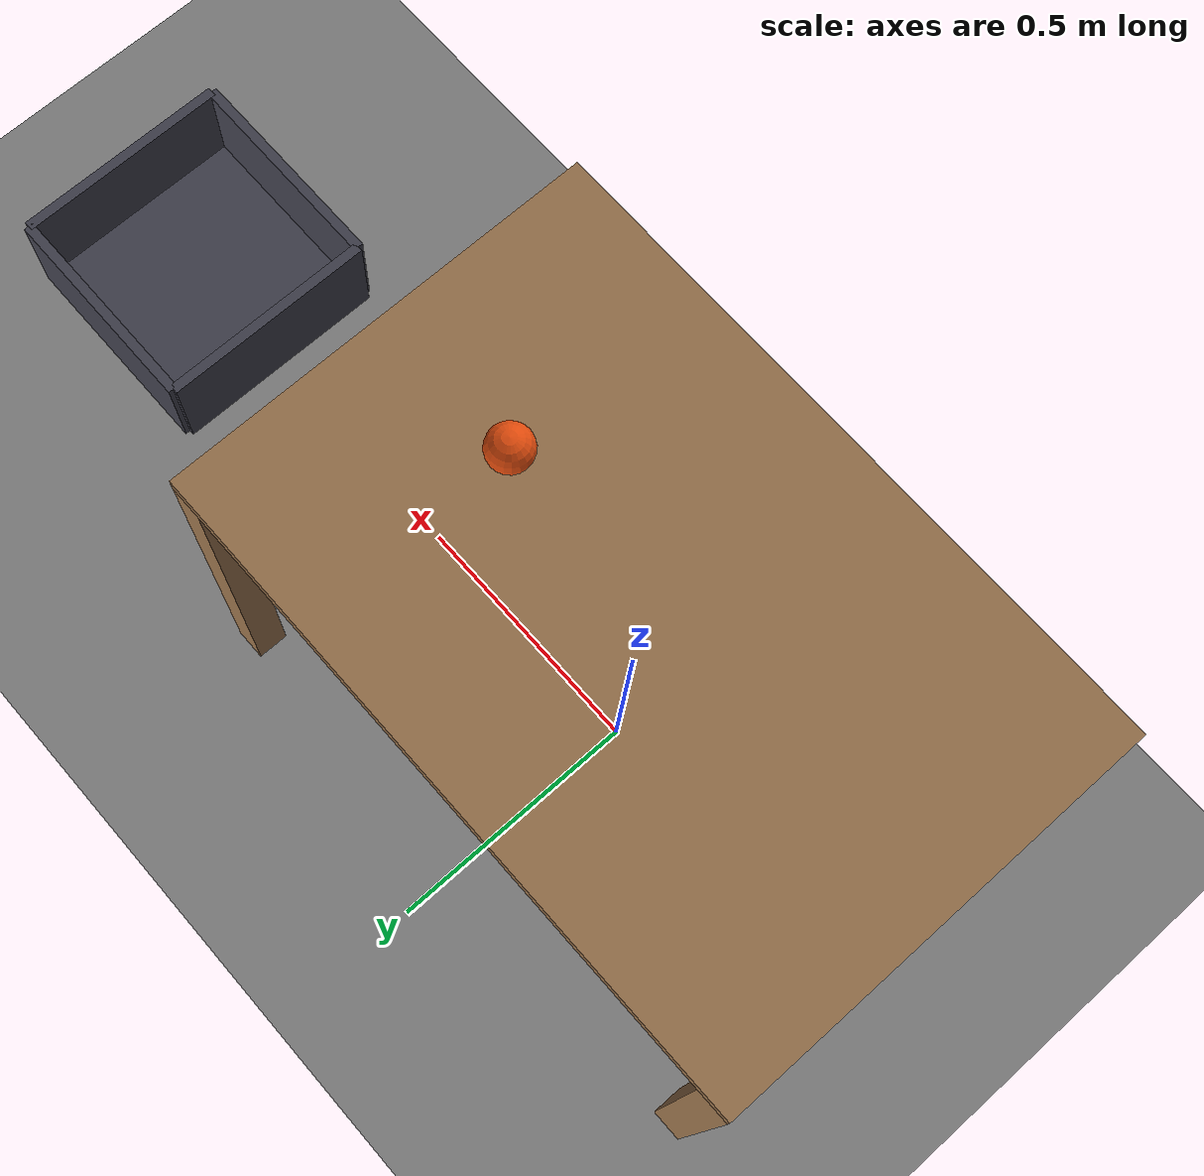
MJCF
<mujoco model="rolling_ball_into_a_floor_bucket">
  <compiler angle="radian"/>
  <option timestep="0.002"/>
  <worldbody>
    <geom name="floor" type="plane" size="6 6 0.1" friction="0.8 0.01 0.002"/>
    <body name="table">
      <geom name="table_top" type="box" pos="0 0 0.785" size="0.6 0.4 0.015" friction="0.6 0.005 0.001" rgba="0.6 0.45 0.3 1"/>
      <geom name="table_near_left_leg" type="box" pos="-0.57 0.37 0.385" size="0.03 0.03 0.385" friction="0.6 0.005 0.001" rgba="0.6 0.45 0.3 1"/>
      <geom name="table_near_right_leg" type="box" pos="-0.57 -0.37 0.385" size="0.03 0.03 0.385" friction="0.6 0.005 0.001" rgba="0.6 0.45 0.3 1"/>
      <geom name="table_far_left_leg" type="box" pos="0.57 0.37 0.385" size="0.03 0.03 0.385" friction="0.6 0.005 0.001" rgba="0.6 0.45 0.3 1"/>
      <geom name="table_far_right_leg" type="box" pos="0.57 -0.37 0.385" size="0.03 0.03 0.385" friction="0.6 0.005 0.001" rgba="0.6 0.45 0.3 1"/>
    </body>
    <body name="bucket">
      <geom name="bucket_base" type="box" pos="1.2 0 0.01" size="0.22 0.22 0.01" friction="0.8 0.01 0.002" solref="0.01 1" rgba="0.25 0.25 0.3 1"/>
      <geom name="bucket_near_wall" type="box" pos="0.98 0 0.1" size="0.01 0.22 0.1" friction="0.8 0.01 0.002" solref="0.01 1" rgba="0.25 0.25 0.3 1"/>
      <geom name="bucket_far_wall" type="box" pos="1.42 0 0.1" size="0.01 0.22 0.1" friction="0.8 0.01 0.002" solref="0.01 1" rgba="0.25 0.25 0.3 1"/>
      <geom name="bucket_left_wall" type="box" pos="1.2 0.22 0.1" size="0.22 0.01 0.1" friction="0.8 0.01 0.002" solref="0.01 1" rgba="0.25 0.25 0.3 1"/>
      <geom name="bucket_right_wall" type="box" pos="1.2 -0.22 0.1" size="0.22 0.01 0.1" friction="0.8 0.01 0.002" solref="0.01 1" rgba="0.25 0.25 0.3 1"/>
    </body>
    <body name="ball" pos="0.3 0 0.84">
      <freejoint/>
      <geom name="ball" type="sphere" pos="0 0 0" size="0.04" mass="0.2" condim="6" friction="0.6 0.01 0.001" solref="0.01 1" rgba="0.9 0.3 0.05 1"/>
    </body>
  </worldbody>
  <keyframe>
    <key name="start" qpos="0.3 0 0.84 1 0 0 0" qvel="1.5 0 0 0 37.5 0"/>
  </keyframe>
</mujoco>
